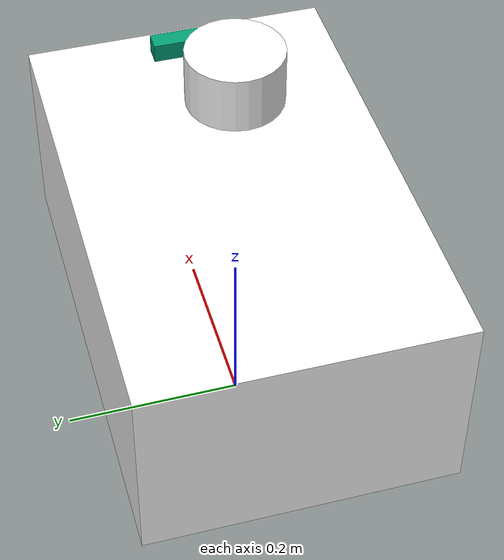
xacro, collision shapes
<?xml version="1.0"?>
<robot name="r300" xmlns:xacro="http://www.ros.org/wiki/xacro">
	<!--robot-->
	<xacro:include filename="$(find r300_simulation)/models/r300.xacro" />
	<!--3D plidar-->
	<xacro:include filename="$(find r300_simulation)/models/3d_lidar.xacro" />
	<!--depth_camera-->
  <xacro:include filename="$(find r300_simulation)/models/depth_camera.xacro" />

	<!--lidar args-->
	<xacro:property name="rplidar_offset_x" value="0" />
	<xacro:property name="rplidar_offset_y" value="0" />
	<xacro:property name="rplidar_offset_z" value="0.47" />

	<!--depth_camera args-->
  <xacro:property name="camera_offset_x" value="0.15" />
  <xacro:property name="camera_offset_y" value="0" />
  <xacro:property name="camera_offset_z" value="0.4" />

	<!--3d_lidar joint-->
	<joint name="rplidar_joint" type="fixed">
		<origin xyz="${rplidar_offset_x} ${rplidar_offset_y} ${rplidar_offset_z}" rpy="0 0 0" />
		<parent link="base_link"/>
		<child link="laser"/>
	</joint>
	<xacro:lidar prefix="3d_lidar"/>

	<!--depth_camera joint-->
    <joint name="kinect_frame_joint" type="fixed">
        <origin xyz="${camera_offset_x} ${camera_offset_y} ${camera_offset_z}" rpy="0 0 0" />
        <parent link="base_link"/>
        <child link="camera_link"/>
    </joint>
    <xacro:depth_camera prefix="camera"/>

</robot>

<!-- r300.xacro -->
<robot name="scout_mini" xmlns:xacro="http://www.ros.org/wiki/xacro">

  <material name="White">
    <color rgba="1 1 1 0.9"/>
  </material>

  <!-- Base link -->
  <link name="base_link">
		<inertial>
        <mass value="25"/>
        <origin xyz="0.0 0.0 0.0"/>
        <inertia ixx="0.688042"   ixy="0.0"   ixz="0.0"
                 iyy="0.826042"   iyz="0.0"
                 izz="0.341667" />
    </inertial>

    <visual>
      <origin rpy="0 0 0" xyz="0 0 0.22"/>
      <geometry>
        <mesh filename="package://r300_simulation/models/meshes/R300.stl"/>
      </geometry>
      <material name="White"/>
    </visual>
    <collision>
      <origin rpy="0 0 0" xyz="0 0 0.22"/>
      <geometry>
        <box size="0.53 0.34 0.22"/>
      </geometry>
    </collision>
  </link>

		<!--gazebo plugin-->
		<gazebo>
    	<plugin name="object_controller" filename="libgazebo_ros_planar_move.so">
      	<commandTopic>cmd_vel</commandTopic>
      	<odometryTopic>odom</odometryTopic>
      	<odometryFrame>odom</odometryFrame>
      	<odometryRate>20.0</odometryRate>
      	<robotBaseFrame>base_link</robotBaseFrame>
    	</plugin>
  	</gazebo>

</robot>

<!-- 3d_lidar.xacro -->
<robot xmlns:xacro="http://www.ros.org/wiki/xacro" name="laser">

	<xacro:macro name="lidar" params="prefix:=lidar">
		<link name="laser">
			<inertial>
				<mass value="0.1" />
				<origin xyz="0 0 0" />
				<inertia ixx="0.01" ixy="0.0" ixz="0.0"
						 iyy="0.01" iyz="0.0"
						 izz="0.01" />
			</inertial>

			<visual>
				<origin xyz=" 0 0 0 " rpy="0 0 0" />
				<geometry>
					<cylinder length="0.03" radius="0.025"/>
				</geometry>
				<material name="White"/>
			</visual>

			<collision>
				<origin xyz="0.0 0.0 0.0" rpy="0 0 0" />
				<geometry>
					<cylinder length="0.06" radius="0.05"/>
				</geometry>
			</collision>
		</link>

	 <gazebo reference="laser">
				<material>Gazebo/White</material>
        <sensor type="ray" name="rplidar">
          <pose>0 0 0 0 0 0</pose>
          <visualize>false</visualize>
          <update_rate>30</update_rate>
          <ray>
            <scan>
              <horizontal>
                <samples>360</samples>
                <resolution>1</resolution>
                <min_angle>-3.14</min_angle>
                <max_angle>3.14</max_angle>
              </horizontal>
							<vertical>
                <samples>16</samples>
                <resolution>1</resolution>
                <min_angle>-0.2616666</min_angle>
                <max_angle>0.2616666</max_angle>
              </vertical>
						</scan>
            <range>
              <min>0.10</min>
              <max>70.0</max>
              <resolution>0.02</resolution>
            </range>
            <noise>
              <type>gaussian</type>
               <mean>0.0</mean>
              <stddev>0.01</stddev>
            </noise>
          </ray>
            <plugin name="velodyne_plugin" filename="libgazebo_ros_velodyne_laser.so">
            	<topicName>pointcloud</topicName>
            	<frameName>livox_frame</frameName>
							<min_range>0.1</min_range>
							<max_range>70</max_range>
							<gaussianNoise>0.008</gaussianNoise>
        	</plugin>
        </sensor>
      </gazebo>
	</xacro:macro>

</robot>

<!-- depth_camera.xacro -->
<robot xmlns:xacro="http://www.ros.org/wiki/xacro" name="camera">

    <xacro:macro name="depth_camera" params="prefix:=camera">
        <link name="${prefix}_link">
            <origin xyz="0 0 0" rpy="0 0 0"/>
            <visual>
                <origin xyz="0 0 0" rpy="0 0 0"/>
                <geometry>
                    <box size="0.02 0.1 0.02"/>
                </geometry>
            </visual>
            <collision>
                <geometry>
                    <box size="0.02 0.1 0.02"/>
                </geometry>
            </collision>
        </link>

        <joint name="${prefix}_optical_joint" type="fixed">
            <origin xyz="0 0 0" rpy="-1.57 0 -1.57"/>
            <parent link="${prefix}_link"/>
            <child link="${prefix}_frame_optical"/>
        </joint>

        <link name="${prefix}_frame_optical"/>

        <gazebo reference="${prefix}_link">
            <sensor type="depth" name="${prefix}">
                <always_on>true</always_on>
                <update_rate>20.0</update_rate>
            	<camera>
                	<horizontal_fov>${60.0*3.14/180}</horizontal_fov>
                	<image>
                    	<width>640</width>
                    	<height>480</height>
                    	<format>R8G8B8</format>
                	</image>
                	<clip>
                    	<near>0.05</near>
                    	<far>16.0</far>
                	</clip>
            	</camera>
            	<plugin name="kinect_${prefix}_controller" filename="libgazebo_ros_openni_kinect.so">
        			<alwaysOn>true</alwaysOn>
        			<updateRate>10.0</updateRate>
        			<cameraName>${prefix}</cameraName>
        			<imageTopicName>rgb/image_raw</imageTopicName>
        			<depthImageTopicName>depth/image_raw</depthImageTopicName>
        			<pointCloudTopicName>depth/points</pointCloudTopicName>
        			<cameraInfoTopicName>rgb/camera_info</cameraInfoTopicName>
        			<depthImageCameraInfoTopicName>depth/camera_info</depthImageCameraInfoTopicName>
        			<frameName>camera_frame_optical</frameName>
        			<baseline>0.1</baseline>
        			<distortionK1>0.0</distortionK1>
        			<distortionK2>0.0</distortionK2>
        			<distortionK3>0.0</distortionK3>
        			<distortionT1>0.0</distortionT1>
    				<distortionT2>0.0</distortionT2>
        			<pointCloudCutoff>0.4</pointCloudCutoff>
    			</plugin>
    		</sensor>
  		</gazebo>
	</xacro:macro>

</robot>
